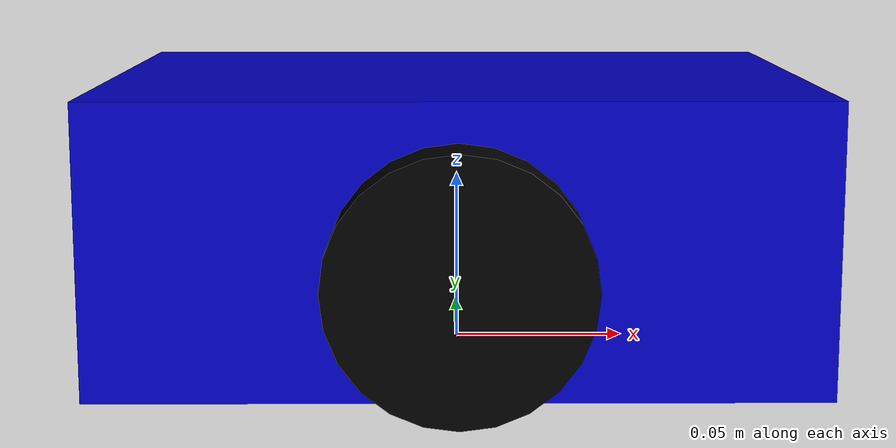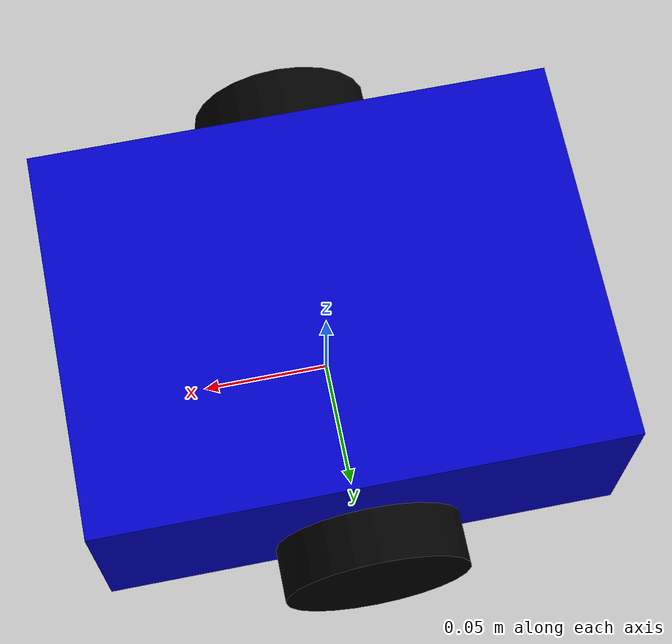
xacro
<?xml version="1.0"?>
<robot xmlns:xacro="http://www.ros.org/wiki/xacro" name="ti_diffbot">

  <xacro:arg name="use_sim_time" default="false"/>
  <xacro:arg name="simulation_mode" default="false"/>

  <!-- 机器人尺寸参数 -->
  <xacro:property name="base_width" value="0.15"/>
  <xacro:property name="base_length" value="0.20"/>
  <xacro:property name="base_height" value="0.08"/>

  <xacro:property name="wheel_radius" value="0.035"/>
  <xacro:property name="wheel_width" value="0.02"/>
  <xacro:property name="wheel_separation" value="0.18"/>

  <!-- 材质定义 -->
  <material name="blue">
    <color rgba="0.0 0.0 0.8 1.0"/>
  </material>

  <material name="black">
    <color rgba="0.0 0.0 0.0 1.0"/>
  </material>

  <material name="white">
    <color rgba="1.0 1.0 1.0 1.0"/>
  </material>

  <!-- 基础坐标系 -->
  <link name="base_link">
    <visual>
      <origin xyz="0 0 0.04" rpy="0 0 0"/>
      <geometry>
        <box size="${base_length} ${base_width} ${base_height}"/>
      </geometry>
      <material name="blue"/>
    </visual>
    <collision>
      <origin xyz="0 0 0.04" rpy="0 0 0"/>
      <geometry>
        <box size="${base_length} ${base_width} ${base_height}"/>
      </geometry>
    </collision>
    <inertial>
      <origin xyz="0 0 0.04" rpy="0 0 0"/>
      <mass value="1.0"/>
      <inertia ixx="0.0083" ixy="0.0" ixz="0.0"
               iyy="0.0083" iyz="0.0"
               izz="0.0083"/>
    </inertial>
  </link>

  <!-- 左轮 -->
  <link name="left_wheel_link">
    <visual>
      <origin xyz="0 0 0" rpy="1.5708 0 0"/>
      <geometry>
        <cylinder radius="${wheel_radius}" length="${wheel_width}"/>
      </geometry>
      <material name="black"/>
    </visual>
    <collision>
      <origin xyz="0 0 0" rpy="1.5708 0 0"/>
      <geometry>
        <cylinder radius="${wheel_radius}" length="${wheel_width}"/>
      </geometry>
    </collision>
    <inertial>
      <origin xyz="0 0 0" rpy="1.5708 0 0"/>
      <mass value="0.1"/>
      <inertia ixx="0.0001" ixy="0.0" ixz="0.0"
               iyy="0.0001" iyz="0.0"
               izz="0.0001"/>
    </inertial>
  </link>

  <!-- 右轮 -->
  <link name="right_wheel_link">
    <visual>
      <origin xyz="0 0 0" rpy="1.5708 0 0"/>
      <geometry>
        <cylinder radius="${wheel_radius}" length="${wheel_width}"/>
      </geometry>
      <material name="black"/>
    </visual>
    <collision>
      <origin xyz="0 0 0" rpy="1.5708 0 0"/>
      <geometry>
        <cylinder radius="${wheel_radius}" length="${wheel_width}"/>
      </geometry>
    </collision>
    <inertial>
      <origin xyz="0 0 0" rpy="1.5708 0 0"/>
      <mass value="0.1"/>
      <inertia ixx="0.0001" ixy="0.0" ixz="0.0"
               iyy="0.0001" iyz="0.0"
               izz="0.0001"/>
    </inertial>
  </link>

  <!-- 左轮关节 -->
  <joint name="left_wheel_joint" type="continuous">
    <parent link="base_link"/>
    <child link="left_wheel_link"/>
    <origin xyz="0 ${wheel_separation/2} ${wheel_radius}" rpy="0 0 0"/>
    <axis xyz="0 1 0"/>
  </joint>

  <!-- 右轮关节 -->
  <joint name="right_wheel_joint" type="continuous">
    <parent link="base_link"/>
    <child link="right_wheel_link"/>
    <origin xyz="0 ${-wheel_separation/2} ${wheel_radius}" rpy="0 0 0"/>
    <axis xyz="0 1 0"/>
  </joint>

  <!-- ros2_control 硬件接口 -->
  <ros2_control name="ti_diffbot_hardware" type="system">
    <hardware>
      <plugin>ti_diffbot_hardware/TiDiffBotHardware</plugin>
      <param name="device_path">/dev/ttyCH341USB0</param>
      <param name="baud_rate">115200</param>
      <param name="enc_ticks_per_rev">8192.0</param>
      <param name="gear_ratio">36.0</param>
      <param name="wheel_radius">0.035</param>
      <param name="wheel_separation">0.18</param>
      <param name="simulation_mode">$(arg simulation_mode)</param>
    </hardware>

    <joint name="left_wheel_joint">
      <command_interface name="velocity">
        <param name="min">-10</param>
        <param name="max">10</param>
      </command_interface>
      <state_interface name="position"/>
      <state_interface name="velocity"/>
    </joint>

    <joint name="right_wheel_joint">
      <command_interface name="velocity">
        <param name="min">-10</param>
        <param name="max">10</param>
      </command_interface>
      <state_interface name="position"/>
      <state_interface name="velocity"/>
    </joint>
  </ros2_control>

</robot>
